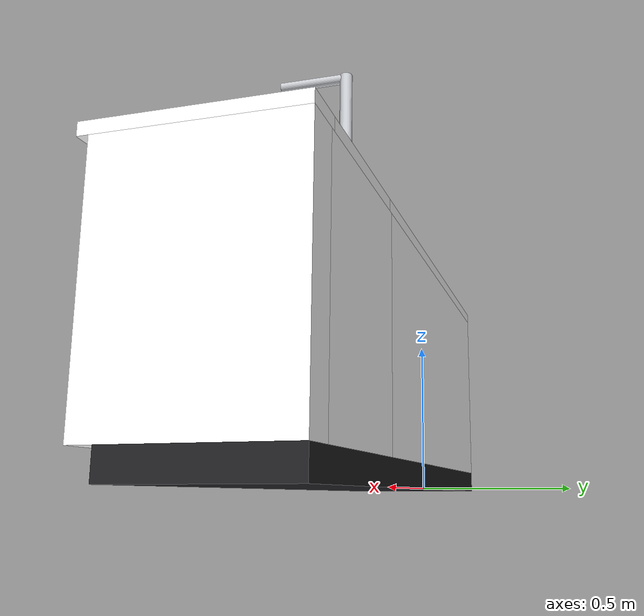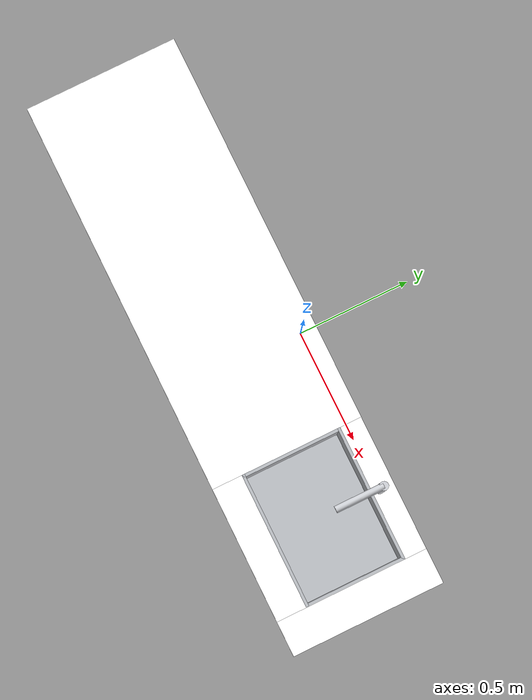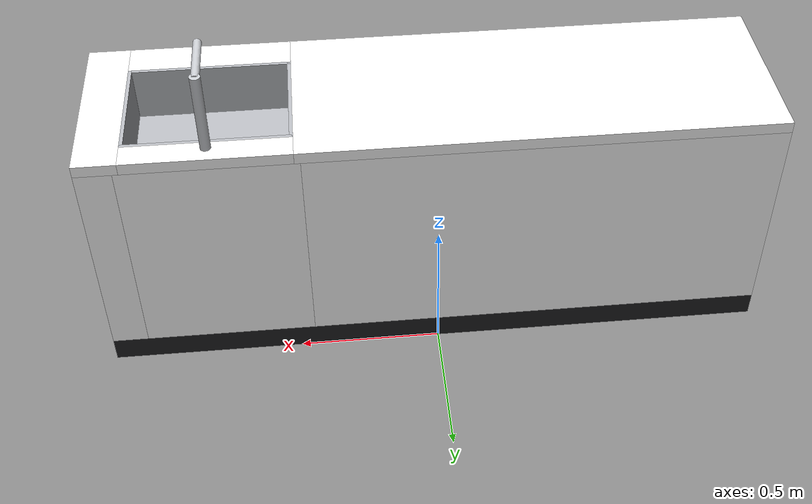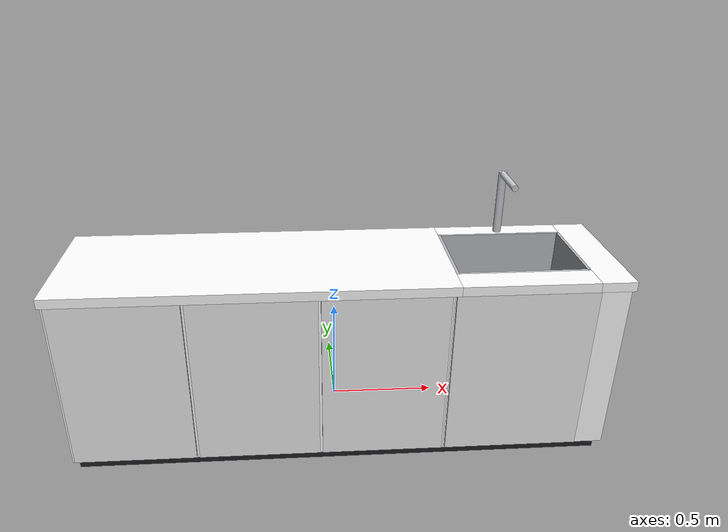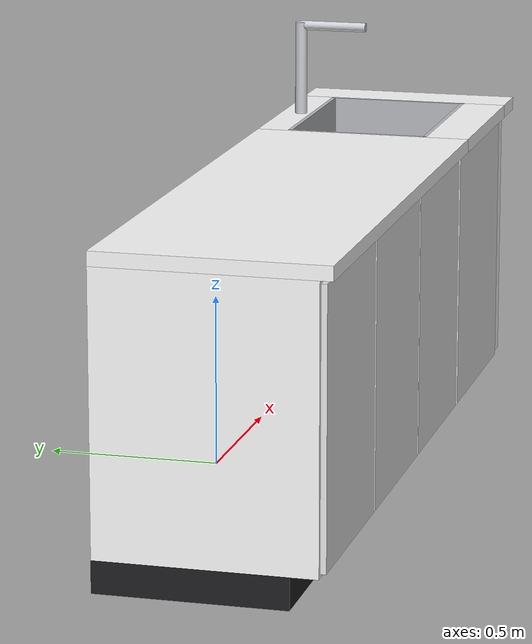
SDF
<?xml version="1.0"?>
<sdf version='1.6'>
  <model name='kitchen_base_cabinets'>
    <static>true</static>
    <link name="link">

      <!-- ============ TOE KICK: 0.089 high, recessed 0.076 ============ -->
      <visual name="toe_kick_visual">
        <pose>0 -0.262 0.0445 0 0 0</pose>
        <geometry>
          <box><size>2.35 0.524 0.089</size></box>
        </geometry>
        <material>
          <ambient>0.12 0.12 0.13 1</ambient>
          <diffuse>0.12 0.12 0.13 1</diffuse>
          <specular>0.05 0.05 0.05 1</specular>
          <emissive>0 0 0 1</emissive>
        </material>
        <cast_shadows>1</cast_shadows>
      </visual>

      <!-- ============ CARCASS, split around the sink void ============ -->
      <!-- West section -->
      <visual name="carcass_west_visual">
        <pose>-0.3625 -0.3 0.4745 0 0 0</pose>
        <geometry>
          <box><size>1.625 0.6 0.771</size></box>
        </geometry>
        <material>
          <pbr><metal><albedo_map>textures/wood.png</albedo_map></metal></pbr>
          <ambient>1 1 1 1</ambient>
          <diffuse>1 1 1 1</diffuse>
          <specular>0.2 0.2 0.2 1</specular>
          <emissive>0 0 0 1</emissive>
        </material>
        <cast_shadows>1</cast_shadows>
      </visual>
      <!-- East section -->
      <visual name="carcass_east_visual">
        <pose>1.1125 -0.3 0.4745 0 0 0</pose>
        <geometry>
          <box><size>0.125 0.6 0.771</size></box>
        </geometry>
        <material>
          <pbr><metal><albedo_map>textures/wood.png</albedo_map></metal></pbr>
          <ambient>1 1 1 1</ambient>
          <diffuse>1 1 1 1</diffuse>
          <specular>0.2 0.2 0.2 1</specular>
          <emissive>0 0 0 1</emissive>
        </material>
        <cast_shadows>1</cast_shadows>
      </visual>
      <!-- Behind the sink -->
      <visual name="carcass_sink_back_visual">
        <pose>0.75 -0.045 0.4745 0 0 0</pose>
        <geometry>
          <box><size>0.6 0.09 0.771</size></box>
        </geometry>
        <material>
          <pbr><metal><albedo_map>textures/wood.png</albedo_map></metal></pbr>
          <ambient>1 1 1 1</ambient>
          <diffuse>1 1 1 1</diffuse>
          <specular>0.2 0.2 0.2 1</specular>
          <emissive>0 0 0 1</emissive>
        </material>
        <cast_shadows>1</cast_shadows>
      </visual>
      <!-- In front of the sink (the false drawer front carries the panel) -->
      <visual name="carcass_sink_front_visual">
        <pose>0.75 -0.565 0.4745 0 0 0</pose>
        <geometry>
          <box><size>0.6 0.07 0.771</size></box>
        </geometry>
        <material>
          <pbr><metal><albedo_map>textures/wood.png</albedo_map></metal></pbr>
          <ambient>1 1 1 1</ambient>
          <diffuse>1 1 1 1</diffuse>
          <specular>0.2 0.2 0.2 1</specular>
          <emissive>0 0 0 1</emissive>
        </material>
        <cast_shadows>1</cast_shadows>
      </visual>

      <!-- ============ DOOR PANELS, 16 mm proud ============ -->
      <visual name="door_1_visual">
        <pose>-0.89915 -0.608 0.475 0 0 0</pose>
        <geometry><box><size>0.5257 0.016 0.75</size></box></geometry>
        <material>
          <pbr><metal><albedo_map>textures/wood.png</albedo_map></metal></pbr>
          <ambient>0.92 0.92 0.92 1</ambient>
          <diffuse>0.92 0.92 0.92 1</diffuse>
          <specular>0.3 0.3 0.3 1</specular>
          <emissive>0 0 0 1</emissive>
        </material>
        <cast_shadows>1</cast_shadows>
      </visual>
      <visual name="door_2_visual">
        <pose>-0.36145 -0.608 0.475 0 0 0</pose>
        <geometry><box><size>0.5257 0.016 0.75</size></box></geometry>
        <material>
          <pbr><metal><albedo_map>textures/wood.png</albedo_map></metal></pbr>
          <ambient>0.92 0.92 0.92 1</ambient>
          <diffuse>0.92 0.92 0.92 1</diffuse>
          <specular>0.3 0.3 0.3 1</specular>
          <emissive>0 0 0 1</emissive>
        </material>
        <cast_shadows>1</cast_shadows>
      </visual>
      <visual name="door_3_visual">
        <pose>0.17625 -0.608 0.475 0 0 0</pose>
        <geometry><box><size>0.5257 0.016 0.75</size></box></geometry>
        <material>
          <pbr><metal><albedo_map>textures/wood.png</albedo_map></metal></pbr>
          <ambient>0.92 0.92 0.92 1</ambient>
          <diffuse>0.92 0.92 0.92 1</diffuse>
          <specular>0.3 0.3 0.3 1</specular>
          <emissive>0 0 0 1</emissive>
        </material>
        <cast_shadows>1</cast_shadows>
      </visual>
      <!-- Sink base front -->
      <visual name="door_sink_visual">
        <pose>0.75 -0.608 0.475 0 0 0</pose>
        <geometry><box><size>0.588 0.016 0.75</size></box></geometry>
        <material>
          <pbr><metal><albedo_map>textures/wood.png</albedo_map></metal></pbr>
          <ambient>0.92 0.92 0.92 1</ambient>
          <diffuse>0.92 0.92 0.92 1</diffuse>
          <specular>0.3 0.3 0.3 1</specular>
          <emissive>0 0 0 1</emissive>
        </material>
        <cast_shadows>1</cast_shadows>
      </visual>

      <!-- ============ COUNTER SLAB, 0.860 - 0.900 ============ -->
      <!-- Four pieces leaving a 0.56 x 0.42 opening for the sink, at
           local x 0.47..1.03, y -0.51..-0.09. -->
      <visual name="counter_west_visual">
        <pose>-0.3525 -0.3175 0.88 0 0 0</pose>
        <geometry><box><size>1.645 0.635 0.04</size></box></geometry>
        <material>
          <pbr><metal><albedo_map>textures/marble.png</albedo_map></metal></pbr>
          <ambient>1 1 1 1</ambient>
          <diffuse>1 1 1 1</diffuse>
          <specular>0.6 0.6 0.6 1</specular>
          <emissive>0 0 0 1</emissive>
        </material>
        <cast_shadows>1</cast_shadows>
      </visual>
      <visual name="counter_east_visual">
        <pose>1.1025 -0.3175 0.88 0 0 0</pose>
        <geometry><box><size>0.145 0.635 0.04</size></box></geometry>
        <material>
          <pbr><metal><albedo_map>textures/marble.png</albedo_map></metal></pbr>
          <ambient>1 1 1 1</ambient>
          <diffuse>1 1 1 1</diffuse>
          <specular>0.6 0.6 0.6 1</specular>
          <emissive>0 0 0 1</emissive>
        </material>
        <cast_shadows>1</cast_shadows>
      </visual>
      <visual name="counter_sink_back_visual">
        <pose>0.75 -0.045 0.88 0 0 0</pose>
        <geometry><box><size>0.56 0.09 0.04</size></box></geometry>
        <material>
          <pbr><metal><albedo_map>textures/marble.png</albedo_map></metal></pbr>
          <ambient>1 1 1 1</ambient>
          <diffuse>1 1 1 1</diffuse>
          <specular>0.6 0.6 0.6 1</specular>
          <emissive>0 0 0 1</emissive>
        </material>
        <cast_shadows>1</cast_shadows>
      </visual>
      <visual name="counter_sink_front_visual">
        <pose>0.75 -0.5725 0.88 0 0 0</pose>
        <geometry><box><size>0.56 0.125 0.04</size></box></geometry>
        <material>
          <pbr><metal><albedo_map>textures/marble.png</albedo_map></metal></pbr>
          <ambient>1 1 1 1</ambient>
          <diffuse>1 1 1 1</diffuse>
          <specular>0.6 0.6 0.6 1</specular>
          <emissive>0 0 0 1</emissive>
        </material>
        <cast_shadows>1</cast_shadows>
      </visual>

      <!-- ============ SINK BASIN: 5 thin stainless panels ============ -->
      <visual name="basin_floor_visual">
        <pose>0.75 -0.3 0.704 0 0 0</pose>
        <geometry><box><size>0.56 0.42 0.012</size></box></geometry>
        <material>
          <pbr><metal><metalness>0.85</metalness><roughness>0.3</roughness></metal></pbr>
          <ambient>0.72 0.73 0.75 1</ambient>
          <diffuse>0.72 0.73 0.75 1</diffuse>
          <specular>0.9 0.9 0.9 1</specular>
          <emissive>0 0 0 1</emissive>
        </material>
      </visual>
      <visual name="basin_wall_back_visual">
        <pose>0.75 -0.096 0.805 0 0 0</pose>
        <geometry><box><size>0.56 0.012 0.19</size></box></geometry>
        <material>
          <pbr><metal><metalness>0.85</metalness><roughness>0.3</roughness></metal></pbr>
          <ambient>0.72 0.73 0.75 1</ambient>
          <diffuse>0.72 0.73 0.75 1</diffuse>
          <specular>0.9 0.9 0.9 1</specular>
          <emissive>0 0 0 1</emissive>
        </material>
      </visual>
      <visual name="basin_wall_front_visual">
        <pose>0.75 -0.504 0.805 0 0 0</pose>
        <geometry><box><size>0.56 0.012 0.19</size></box></geometry>
        <material>
          <pbr><metal><metalness>0.85</metalness><roughness>0.3</roughness></metal></pbr>
          <ambient>0.72 0.73 0.75 1</ambient>
          <diffuse>0.72 0.73 0.75 1</diffuse>
          <specular>0.9 0.9 0.9 1</specular>
          <emissive>0 0 0 1</emissive>
        </material>
      </visual>
      <visual name="basin_wall_west_visual">
        <pose>0.476 -0.3 0.805 0 0 0</pose>
        <geometry><box><size>0.012 0.42 0.19</size></box></geometry>
        <material>
          <pbr><metal><metalness>0.85</metalness><roughness>0.3</roughness></metal></pbr>
          <ambient>0.72 0.73 0.75 1</ambient>
          <diffuse>0.72 0.73 0.75 1</diffuse>
          <specular>0.9 0.9 0.9 1</specular>
          <emissive>0 0 0 1</emissive>
        </material>
      </visual>
      <visual name="basin_wall_east_visual">
        <pose>1.024 -0.3 0.805 0 0 0</pose>
        <geometry><box><size>0.012 0.42 0.19</size></box></geometry>
        <material>
          <pbr><metal><metalness>0.85</metalness><roughness>0.3</roughness></metal></pbr>
          <ambient>0.72 0.73 0.75 1</ambient>
          <diffuse>0.72 0.73 0.75 1</diffuse>
          <specular>0.9 0.9 0.9 1</specular>
          <emissive>0 0 0 1</emissive>
        </material>
      </visual>

      <!-- ============ FAUCET ============ -->
      <visual name="faucet_body_visual">
        <pose>0.75 -0.06 1.04 0 0 0</pose>
        <geometry><cylinder><radius>0.018</radius><length>0.28</length></cylinder></geometry>
        <material>
          <pbr><metal><metalness>0.9</metalness><roughness>0.15</roughness></metal></pbr>
          <ambient>0.8 0.81 0.83 1</ambient>
          <diffuse>0.8 0.81 0.83 1</diffuse>
          <specular>1 1 1 1</specular>
          <emissive>0 0 0 1</emissive>
        </material>
      </visual>
      <!-- Spout: cylinder laid along -y by a +90 deg roll. -->
      <visual name="faucet_spout_visual">
        <pose>0.75 -0.16 1.17 1.5708 0 0</pose>
        <geometry><cylinder><radius>0.014</radius><length>0.2</length></cylinder></geometry>
        <material>
          <pbr><metal><metalness>0.9</metalness><roughness>0.15</roughness></metal></pbr>
          <ambient>0.8 0.81 0.83 1</ambient>
          <diffuse>0.8 0.81 0.83 1</diffuse>
          <specular>1 1 1 1</specular>
          <emissive>0 0 0 1</emissive>
        </material>
      </visual>

      <!-- ============ COLLISION ============ -->
      <!-- Two boxes are enough: the robot can only ever touch the toe kick
           and the cabinet front. The sink void and basin are far above it. -->
      <collision name="toe_kick_collision">
        <pose>0 -0.262 0.0445 0 0 0</pose>
        <geometry><box><size>2.35 0.524 0.089</size></box></geometry>
      </collision>
      <collision name="body_collision">
        <pose>0 -0.308 0.4945 0 0 0</pose>
        <geometry><box><size>2.35 0.616 0.811</size></box></geometry>
      </collision>

    </link>
    <allow_auto_disable>1</allow_auto_disable>
  </model>
</sdf>
